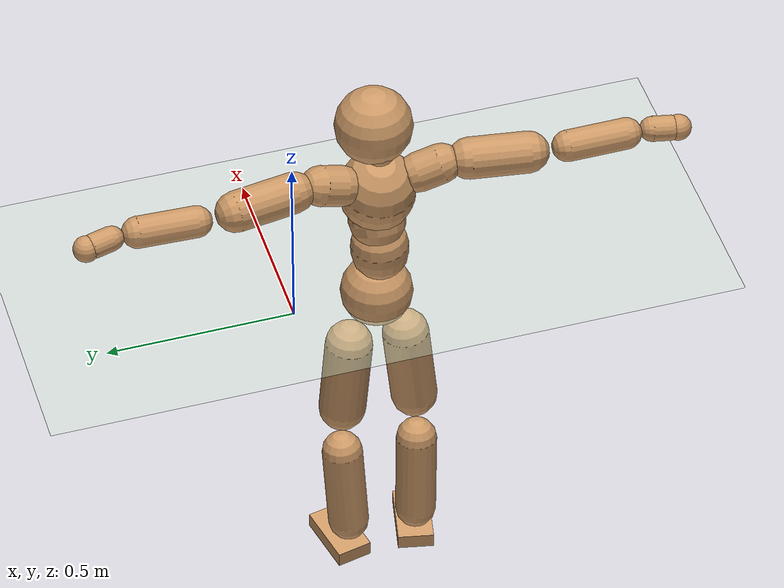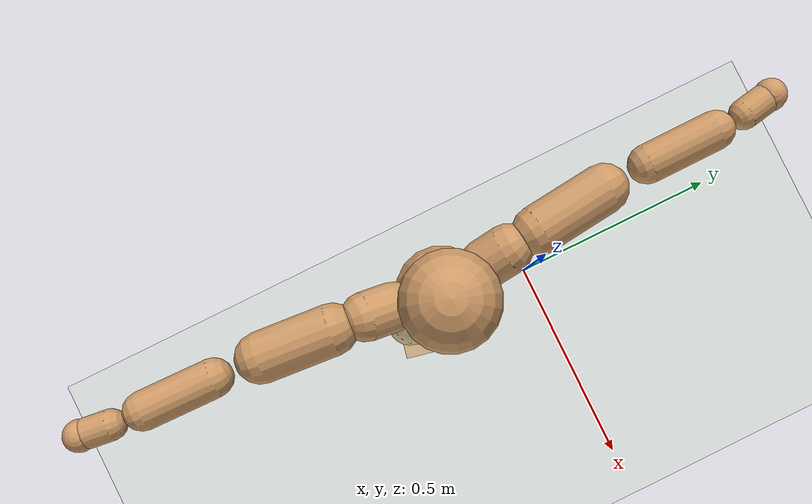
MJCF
<mujoco model="humanoid">
  <compiler coordinate="local"/>
  <default>
    <joint damping="0.0" armature="0.01" stiffness="0.0" limited="true"/>
    <geom conaffinity="1" condim="3" contype="7" margin="0.001" rgba="0.8 0.6 .4 1"/>
  </default>
  <asset>
    <texture type="skybox" builtin="gradient" rgb1=".4 .5 .6" rgb2="0 0 0" width="100" height="100"/>
    <texture builtin="flat" height="1278" mark="cross" markrgb="1 1 1" name="texgeom" random="0.01" rgb1="0.8 0.6 0.4" rgb2="0.8 0.6 0.4" type="cube" width="127"/>
    <texture builtin="checker" height="100" name="texplane" rgb1="0 0 0" rgb2="0.8 0.8 0.8" type="2d" width="100"/>
    <material name="MatPlane" reflectance="0.5" shininess="1" specular="1" texrepeat="60 60" texture="texplane"/>
    <material name="geom" texture="texgeom" texuniform="true"/>
  </asset>
  <worldbody>
    <light cutoff="100" diffuse="1 1 1" dir="-0 0 -1.3" directional="true" exponent="1" pos="0 0 1.3" specular=".1 .1 .1"/>
    <geom conaffinity="1" condim="3" name="floor" pos="0 0 0" rgba="0.8 0.9 0.8 1" size="100 100 .2" type="plane" material="MatPlane"/>
    <body name="Pelvis" pos="-0.0018 -0.2214 0.0298">
      <freejoint name="Pelvis"/>
      <geom type="sphere" contype="1" conaffinity="1" density="500" size="0.0956" pos="0.0000 0.0000 0.0000" name="Pelvis"/>
      <body name="L_Hip" pos="-0.0066 0.0708 -0.0918">
        <joint name="L_Hip_x" type="hinge" pos="0 0 0" axis="1 0 0" stiffness="800" damping="80" armature="0.02" range="-180.0000 180.0000"/>
        <joint name="L_Hip_y" type="hinge" pos="0 0 0" axis="0 1 0" stiffness="800" damping="80" armature="0.02" range="-180.0000 180.0000"/>
        <joint name="L_Hip_z" type="hinge" pos="0 0 0" axis="0 0 1" stiffness="800" damping="80" armature="0.02" range="-180.0000 180.0000"/>
        <geom type="capsule" contype="1" conaffinity="1" density="500" fromto="-0.0010 0.0069 -0.0757 -0.0040 0.0274 -0.3028" size="0.0628" name="L_Hip"/>
        <body name="L_Knee" pos="-0.005 0.0343 -0.3785">
          <joint name="L_Knee_x" type="hinge" pos="0 0 0" axis="1 0 0" stiffness="800" damping="80" armature="0.02" range="-180.0000 180.0000"/>
          <joint name="L_Knee_y" type="hinge" pos="0 0 0" axis="0 1 0" stiffness="800" damping="80" armature="0.02" range="-180.0000 180.0000"/>
          <joint name="L_Knee_z" type="hinge" pos="0 0 0" axis="0 0 1" stiffness="800" damping="80" armature="0.02" range="-180.0000 180.0000"/>
          <geom type="capsule" contype="1" conaffinity="1" density="500" fromto="-0.0090 -0.0027 -0.0806 -0.0358 -0.0110 -0.3223" size="0.0549" name="L_Knee"/>
          <body name="L_Ankle" pos="-0.0448 -0.0137 -0.4028">
            <joint name="L_Ankle_x" type="hinge" pos="0 0 0" axis="1 0 0" stiffness="800" damping="80" armature="0.02" range="-180.0000 180.0000"/>
            <joint name="L_Ankle_y" type="hinge" pos="0 0 0" axis="0 1 0" stiffness="800" damping="80" armature="0.02" range="-180.0000 180.0000"/>
            <joint name="L_Ankle_z" type="hinge" pos="0 0 0" axis="0 0 1" stiffness="800" damping="80" armature="0.02" range="-180.0000 180.0000"/>
            <geom type="box" contype="1" conaffinity="1" density="500" pos="0.0601 0.0128 -0.0281" size="0.0857 0.0481 0.0211" quat="0.9945 0.0000 0.0000 0.1046" name="L_Ankle"/>
            <body name="L_Toe" pos="0.1201 0.0256 -0.0561">
              <joint name="L_Toe_x" type="hinge" pos="0 0 0" axis="1 0 0" stiffness="500" damping="50" armature="0.02" range="-180.0000 180.0000"/>
              <joint name="L_Toe_y" type="hinge" pos="0 0 0" axis="0 1 0" stiffness="500" damping="50" armature="0.02" range="-180.0000 180.0000"/>
              <joint name="L_Toe_z" type="hinge" pos="0 0 0" axis="0 0 1" stiffness="500" damping="50" armature="0.02" range="-180.0000 180.0000"/>
              <geom type="box" contype="1" conaffinity="1" density="500" pos="0.0000 0.0000 0.0270" size="0.001 0.0024 0.001" quat="0.9939 0.0000 0.0000 0.1107" name="L_Toe"/>
            </body>
          </body>
        </body>
      </body>
      <body name="R_Hip" pos="-0.0041 -0.0691 -0.091">
        <joint name="R_Hip_x" type="hinge" pos="0 0 0" axis="1 0 0" stiffness="800" damping="80" armature="0.02" range="-180.0000 180.0000"/>
        <joint name="R_Hip_y" type="hinge" pos="0 0 0" axis="0 1 0" stiffness="800" damping="80" armature="0.02" range="-180.0000 180.0000"/>
        <joint name="R_Hip_z" type="hinge" pos="0 0 0" axis="0 0 1" stiffness="800" damping="80" armature="0.02" range="-180.0000 180.0000"/>
        <geom type="capsule" contype="1" conaffinity="1" density="500" fromto="-0.0019 -0.0077 -0.0772 -0.0075 -0.0308 -0.3090" size="0.0618" name="R_Hip"/>
        <body name="R_Knee" pos="-0.0093 -0.0385 -0.3862">
          <joint name="R_Knee_x" type="hinge" pos="0 0 0" axis="1 0 0" stiffness="800" damping="80" armature="0.02" range="-180.0000 180.0000"/>
          <joint name="R_Knee_y" type="hinge" pos="0 0 0" axis="0 1 0" stiffness="800" damping="80" armature="0.02" range="-180.0000 180.0000"/>
          <joint name="R_Knee_z" type="hinge" pos="0 0 0" axis="0 0 1" stiffness="800" damping="80" armature="0.02" range="-180.0000 180.0000"/>
          <geom type="capsule" contype="1" conaffinity="1" density="500" fromto="-0.0087 0.0032 -0.0807 -0.0346 0.0128 -0.3226" size="0.0548" name="R_Knee"/>
          <body name="R_Ankle" pos="-0.0433 0.016 -0.4033">
            <joint name="R_Ankle_x" type="hinge" pos="0 0 0" axis="1 0 0" stiffness="800" damping="80" armature="0.02" range="-180.0000 180.0000"/>
            <joint name="R_Ankle_y" type="hinge" pos="0 0 0" axis="0 1 0" stiffness="800" damping="80" armature="0.02" range="-180.0000 180.0000"/>
            <joint name="R_Ankle_z" type="hinge" pos="0 0 0" axis="0 0 1" stiffness="800" damping="80" armature="0.02" range="-180.0000 180.0000"/>
            <geom type="box" contype="1" conaffinity="1" density="500" pos="0.0620 -0.0130 -0.0243" size="0.0869 0.0484 0.021" quat="0.9947 0.0000 0.0000 -0.1028" name="R_Ankle"/>
            <body name="R_Toe" pos="0.1241 -0.0259 -0.0487">
              <joint name="R_Toe_x" type="hinge" pos="0 0 0" axis="1 0 0" stiffness="500" damping="50" armature="0.02" range="-180.0000 180.0000"/>
              <joint name="R_Toe_y" type="hinge" pos="0 0 0" axis="0 1 0" stiffness="500" damping="50" armature="0.02" range="-180.0000 180.0000"/>
              <joint name="R_Toe_z" type="hinge" pos="0 0 0" axis="0 0 1" stiffness="500" damping="50" armature="0.02" range="-180.0000 180.0000"/>
              <geom type="box" contype="1" conaffinity="1" density="500" pos="0.0000 0.0000 0.0250" size="0.001 0.0024 0.0011" quat="0.9956 0.0000 0.0000 -0.0936" name="R_Toe"/>
            </body>
          </body>
        </body>
      </body>
      <body name="Torso" pos="-0.0275 -0.0025 0.1097">
        <joint name="Torso_x" type="hinge" pos="0 0 0" axis="1 0 0" stiffness="1000" damping="100" armature="0.02" range="-180.0000 180.0000"/>
        <joint name="Torso_y" type="hinge" pos="0 0 0" axis="0 1 0" stiffness="1000" damping="100" armature="0.02" range="-180.0000 180.0000"/>
        <joint name="Torso_z" type="hinge" pos="0 0 0" axis="0 0 1" stiffness="1000" damping="100" armature="0.02" range="-180.0000 180.0000"/>
        <geom type="capsule" contype="1" conaffinity="1" density="500" fromto="0.0002 0.0031 0.0806 0.0001 0.0021 0.0537" size="0.0753" name="Torso"/>
        <body name="Spine" pos="0.0004 0.0052 0.1343">
          <joint name="Spine_x" type="hinge" pos="0 0 0" axis="1 0 0" stiffness="1000" damping="100" armature="0.02" range="-180.0000 180.0000"/>
          <joint name="Spine_y" type="hinge" pos="0 0 0" axis="0 1 0" stiffness="1000" damping="100" armature="0.02" range="-180.0000 180.0000"/>
          <joint name="Spine_z" type="hinge" pos="0 0 0" axis="0 0 1" stiffness="1000" damping="100" armature="0.02" range="-180.0000 180.0000"/>
          <geom type="capsule" contype="1" conaffinity="1" density="500" fromto="0.0156 0.0010 0.0314 0.0104 0.0007 0.0210" size="0.0749" name="Spine"/>
          <body name="Chest" pos="0.0261 0.0016 0.0524">
            <joint name="Chest_x" type="hinge" pos="0 0 0" axis="1 0 0" stiffness="1000" damping="100" armature="0.02" range="-180.0000 180.0000"/>
            <joint name="Chest_y" type="hinge" pos="0 0 0" axis="0 1 0" stiffness="1000" damping="100" armature="0.02" range="-180.0000 180.0000"/>
            <joint name="Chest_z" type="hinge" pos="0 0 0" axis="0 0 1" stiffness="1000" damping="100" armature="0.02" range="-180.0000 180.0000"/>
            <geom type="capsule" contype="1" conaffinity="1" density="500" fromto="-0.0232 -0.0011 0.0909 -0.0155 -0.0007 0.0606" size="0.0984" name="Chest"/>
            <body name="Neck" pos="-0.0447 -0.0028 0.2132">
              <joint name="Neck_x" type="hinge" pos="0 0 0" axis="1 0 0" stiffness="500" damping="50" armature="0.02" range="-180.0000 180.0000"/>
              <joint name="Neck_y" type="hinge" pos="0 0 0" axis="0 1 0" stiffness="500" damping="50" armature="0.02" range="-180.0000 180.0000"/>
              <joint name="Neck_z" type="hinge" pos="0 0 0" axis="0 0 1" stiffness="500" damping="50" armature="0.02" range="-180.0000 180.0000"/>
              <geom type="capsule" contype="1" conaffinity="1" density="500" fromto="0.0099 0.0010 0.0125 0.0396 0.0038 0.0498" size="0.0436" name="Neck"/>
              <body name="Head" pos="0.0495 0.0048 0.0623">
                <joint name="Head_x" type="hinge" pos="0 0 0" axis="1 0 0" stiffness="500" damping="50" armature="0.02" range="-180.0000 180.0000"/>
                <joint name="Head_y" type="hinge" pos="0 0 0" axis="0 1 0" stiffness="500" damping="50" armature="0.02" range="-180.0000 180.0000"/>
                <joint name="Head_z" type="hinge" pos="0 0 0" axis="0 0 1" stiffness="500" damping="50" armature="0.02" range="-180.0000 180.0000"/>
                <geom type="sphere" contype="1" conaffinity="1" density="500" size="0.1007" pos="0.0000 0.0000 0.0000" name="Head"/>
              </body>
            </body>
            <body name="L_Thorax" pos="-0.0333 0.0806 0.1222">
              <joint name="L_Thorax_x" type="hinge" pos="0 0 0" axis="1 0 0" stiffness="500" damping="50" armature="0.02" range="-180.0000 180.0000"/>
              <joint name="L_Thorax_y" type="hinge" pos="0 0 0" axis="0 1 0" stiffness="500" damping="50" armature="0.02" range="-180.0000 180.0000"/>
              <joint name="L_Thorax_z" type="hinge" pos="0 0 0" axis="0 0 1" stiffness="500" damping="50" armature="0.02" range="-180.0000 180.0000"/>
              <geom type="capsule" contype="1" conaffinity="1" density="500" fromto="-0.0018 0.0185 0.0063 -0.0073 0.0742 0.0254" size="0.0529" name="L_Thorax"/>
              <body name="L_Shoulder" pos="-0.0092 0.0927 0.0317">
                <joint name="L_Shoulder_x" type="hinge" pos="0 0 0" axis="1 0 0" stiffness="500" damping="50" armature="0.02" range="-720.0000 720.0000"/>
                <joint name="L_Shoulder_y" type="hinge" pos="0 0 0" axis="0 1 0" stiffness="500" damping="50" armature="0.02" range="-720.0000 720.0000"/>
                <joint name="L_Shoulder_z" type="hinge" pos="0 0 0" axis="0 0 1" stiffness="500" damping="50" armature="0.02" range="-720.0000 720.0000"/>
                <geom type="capsule" contype="1" conaffinity="1" density="500" fromto="-0.0057 0.0525 -0.0027 -0.0227 0.2101 -0.0108" size="0.0528" name="L_Shoulder"/>
                <body name="L_Elbow" pos="-0.0284 0.2626 -0.0135">
                  <joint name="L_Elbow_x" type="hinge" pos="0 0 0" axis="1 0 0" stiffness="500" damping="50" armature="0.02" range="-720.0000 720.0000"/>
                  <joint name="L_Elbow_y" type="hinge" pos="0 0 0" axis="0 1 0" stiffness="500" damping="50" armature="0.02" range="-720.0000 720.0000"/>
                  <joint name="L_Elbow_z" type="hinge" pos="0 0 0" axis="0 0 1" stiffness="500" damping="50" armature="0.02" range="-720.0000 720.0000"/>
                  <geom type="capsule" contype="1" conaffinity="1" density="500" fromto="-0.0001 0.0506 0.0019 -0.0006 0.2025 0.0075" size="0.041" name="L_Elbow"/>
                  <body name="L_Wrist" pos="-0.0007 0.2531 0.0094">
                    <joint name="L_Wrist_x" type="hinge" pos="0 0 0" axis="1 0 0" stiffness="300" damping="30" armature="0.02" range="-180.0000 180.0000"/>
                    <joint name="L_Wrist_y" type="hinge" pos="0 0 0" axis="0 1 0" stiffness="300" damping="30" armature="0.02" range="-180.0000 180.0000"/>
                    <joint name="L_Wrist_z" type="hinge" pos="0 0 0" axis="0 0 1" stiffness="300" damping="30" armature="0.02" range="-180.0000 180.0000"/>
                    <geom type="capsule" contype="1" conaffinity="1" density="500" fromto="-0.0030 0.0170 -0.0017 -0.0121 0.0679 -0.0066" size="0.0321" name="L_Wrist"/>
                    <body name="L_Hand" pos="-0.0151 0.0849 -0.0083">
                      <joint name="L_Hand_x" type="hinge" pos="0 0 0" axis="1 0 0" stiffness="300" damping="30" armature="0.02" range="-180.0000 180.0000"/>
                      <joint name="L_Hand_y" type="hinge" pos="0 0 0" axis="0 1 0" stiffness="300" damping="30" armature="0.02" range="-180.0000 180.0000"/>
                      <joint name="L_Hand_z" type="hinge" pos="0 0 0" axis="0 0 1" stiffness="300" damping="30" armature="0.02" range="-180.0000 180.0000"/>
                      <geom type="sphere" contype="1" conaffinity="1" density="500" size="0.0340" pos="0.0000 0.0000 0.0000" name="L_Hand"/>
                    </body>
                  </body>
                </body>
              </body>
            </body>
            <body name="R_Thorax" pos="-0.0379 -0.0832 0.1193">
              <joint name="R_Thorax_x" type="hinge" pos="0 0 0" axis="1 0 0" stiffness="500" damping="50" armature="0.02" range="-180.0000 180.0000"/>
              <joint name="R_Thorax_y" type="hinge" pos="0 0 0" axis="0 1 0" stiffness="500" damping="50" armature="0.02" range="-180.0000 180.0000"/>
              <joint name="R_Thorax_z" type="hinge" pos="0 0 0" axis="0 0 1" stiffness="500" damping="50" armature="0.02" range="-180.0000 180.0000"/>
              <geom type="capsule" contype="1" conaffinity="1" density="500" fromto="-0.0019 -0.0195 0.0068 -0.0077 -0.0780 0.0270" size="0.0518" name="R_Thorax"/>
              <body name="R_Shoulder" pos="-0.0096 -0.0975 0.0338">
                <joint name="R_Shoulder_x" type="hinge" pos="0 0 0" axis="1 0 0" stiffness="500" damping="50" armature="0.02" range="-720.0000 720.0000"/>
                <joint name="R_Shoulder_y" type="hinge" pos="0 0 0" axis="0 1 0" stiffness="500" damping="50" armature="0.02" range="-720.0000 720.0000"/>
                <joint name="R_Shoulder_z" type="hinge" pos="0 0 0" axis="0 0 1" stiffness="500" damping="50" armature="0.02" range="-720.0000 720.0000"/>
                <geom type="capsule" contype="1" conaffinity="1" density="500" fromto="-0.0044 -0.0514 -0.0028 -0.0176 -0.2056 -0.0110" size="0.0542" name="R_Shoulder"/>
                <body name="R_Elbow" pos="-0.022 -0.257 -0.0138">
                  <joint name="R_Elbow_x" type="hinge" pos="0 0 0" axis="1 0 0" stiffness="500" damping="50" armature="0.02" range="-720.0000 720.0000"/>
                  <joint name="R_Elbow_y" type="hinge" pos="0 0 0" axis="0 1 0" stiffness="500" damping="50" armature="0.02" range="-720.0000 720.0000"/>
                  <joint name="R_Elbow_z" type="hinge" pos="0 0 0" axis="0 0 1" stiffness="500" damping="50" armature="0.02" range="-720.0000 720.0000"/>
                  <geom type="capsule" contype="1" conaffinity="1" density="500" fromto="-0.0010 -0.0517 0.0015 -0.0042 -0.2067 0.0062" size="0.0412" name="R_Elbow"/>
                  <body name="R_Wrist" pos="-0.0052 -0.2584 0.0077">
                    <joint name="R_Wrist_x" type="hinge" pos="0 0 0" axis="1 0 0" stiffness="300" damping="30" armature="0.02" range="-180.0000 180.0000"/>
                    <joint name="R_Wrist_y" type="hinge" pos="0 0 0" axis="0 1 0" stiffness="300" damping="30" armature="0.02" range="-180.0000 180.0000"/>
                    <joint name="R_Wrist_z" type="hinge" pos="0 0 0" axis="0 0 1" stiffness="300" damping="30" armature="0.02" range="-180.0000 180.0000"/>
                    <geom type="capsule" contype="1" conaffinity="1" density="500" fromto="-0.0021 -0.0171 -0.0012 -0.0084 -0.0683 -0.0050" size="0.0328" name="R_Wrist"/>
                    <body name="R_Hand" pos="-0.0105 -0.0853 -0.0062">
                      <joint name="R_Hand_x" type="hinge" pos="0 0 0" axis="1 0 0" stiffness="300" damping="30" armature="0.02" range="-180.0000 180.0000"/>
                      <joint name="R_Hand_y" type="hinge" pos="0 0 0" axis="0 1 0" stiffness="300" damping="30" armature="0.02" range="-180.0000 180.0000"/>
                      <joint name="R_Hand_z" type="hinge" pos="0 0 0" axis="0 0 1" stiffness="300" damping="30" armature="0.02" range="-180.0000 180.0000"/>
                      <geom type="sphere" contype="1" conaffinity="1" density="500" size="0.0342" pos="0.0000 0.0000 0.0000" name="R_Hand"/>
                    </body>
                  </body>
                </body>
              </body>
            </body>
          </body>
        </body>
      </body>
    </body>
  </worldbody>
  <actuator>
    <motor name="L_Hip_x" joint="L_Hip_x" gear="500"/>
    <motor name="L_Hip_y" joint="L_Hip_y" gear="500"/>
    <motor name="L_Hip_z" joint="L_Hip_z" gear="500"/>
    <motor name="L_Knee_x" joint="L_Knee_x" gear="500"/>
    <motor name="L_Knee_y" joint="L_Knee_y" gear="500"/>
    <motor name="L_Knee_z" joint="L_Knee_z" gear="500"/>
    <motor name="L_Ankle_x" joint="L_Ankle_x" gear="500"/>
    <motor name="L_Ankle_y" joint="L_Ankle_y" gear="500"/>
    <motor name="L_Ankle_z" joint="L_Ankle_z" gear="500"/>
    <motor name="L_Toe_x" joint="L_Toe_x" gear="500"/>
    <motor name="L_Toe_y" joint="L_Toe_y" gear="500"/>
    <motor name="L_Toe_z" joint="L_Toe_z" gear="500"/>
    <motor name="R_Hip_x" joint="R_Hip_x" gear="500"/>
    <motor name="R_Hip_y" joint="R_Hip_y" gear="500"/>
    <motor name="R_Hip_z" joint="R_Hip_z" gear="500"/>
    <motor name="R_Knee_x" joint="R_Knee_x" gear="500"/>
    <motor name="R_Knee_y" joint="R_Knee_y" gear="500"/>
    <motor name="R_Knee_z" joint="R_Knee_z" gear="500"/>
    <motor name="R_Ankle_x" joint="R_Ankle_x" gear="500"/>
    <motor name="R_Ankle_y" joint="R_Ankle_y" gear="500"/>
    <motor name="R_Ankle_z" joint="R_Ankle_z" gear="500"/>
    <motor name="R_Toe_x" joint="R_Toe_x" gear="500"/>
    <motor name="R_Toe_y" joint="R_Toe_y" gear="500"/>
    <motor name="R_Toe_z" joint="R_Toe_z" gear="500"/>
    <motor name="Torso_x" joint="Torso_x" gear="500"/>
    <motor name="Torso_y" joint="Torso_y" gear="500"/>
    <motor name="Torso_z" joint="Torso_z" gear="500"/>
    <motor name="Spine_x" joint="Spine_x" gear="500"/>
    <motor name="Spine_y" joint="Spine_y" gear="500"/>
    <motor name="Spine_z" joint="Spine_z" gear="500"/>
    <motor name="Chest_x" joint="Chest_x" gear="500"/>
    <motor name="Chest_y" joint="Chest_y" gear="500"/>
    <motor name="Chest_z" joint="Chest_z" gear="500"/>
    <motor name="Neck_x" joint="Neck_x" gear="500"/>
    <motor name="Neck_y" joint="Neck_y" gear="500"/>
    <motor name="Neck_z" joint="Neck_z" gear="500"/>
    <motor name="Head_x" joint="Head_x" gear="500"/>
    <motor name="Head_y" joint="Head_y" gear="500"/>
    <motor name="Head_z" joint="Head_z" gear="500"/>
    <motor name="L_Thorax_x" joint="L_Thorax_x" gear="500"/>
    <motor name="L_Thorax_y" joint="L_Thorax_y" gear="500"/>
    <motor name="L_Thorax_z" joint="L_Thorax_z" gear="500"/>
    <motor name="L_Shoulder_x" joint="L_Shoulder_x" gear="500"/>
    <motor name="L_Shoulder_y" joint="L_Shoulder_y" gear="500"/>
    <motor name="L_Shoulder_z" joint="L_Shoulder_z" gear="500"/>
    <motor name="L_Elbow_x" joint="L_Elbow_x" gear="500"/>
    <motor name="L_Elbow_y" joint="L_Elbow_y" gear="500"/>
    <motor name="L_Elbow_z" joint="L_Elbow_z" gear="500"/>
    <motor name="L_Wrist_x" joint="L_Wrist_x" gear="500"/>
    <motor name="L_Wrist_y" joint="L_Wrist_y" gear="500"/>
    <motor name="L_Wrist_z" joint="L_Wrist_z" gear="500"/>
    <motor name="L_Hand_x" joint="L_Hand_x" gear="500"/>
    <motor name="L_Hand_y" joint="L_Hand_y" gear="500"/>
    <motor name="L_Hand_z" joint="L_Hand_z" gear="500"/>
    <motor name="R_Thorax_x" joint="R_Thorax_x" gear="500"/>
    <motor name="R_Thorax_y" joint="R_Thorax_y" gear="500"/>
    <motor name="R_Thorax_z" joint="R_Thorax_z" gear="500"/>
    <motor name="R_Shoulder_x" joint="R_Shoulder_x" gear="500"/>
    <motor name="R_Shoulder_y" joint="R_Shoulder_y" gear="500"/>
    <motor name="R_Shoulder_z" joint="R_Shoulder_z" gear="500"/>
    <motor name="R_Elbow_x" joint="R_Elbow_x" gear="500"/>
    <motor name="R_Elbow_y" joint="R_Elbow_y" gear="500"/>
    <motor name="R_Elbow_z" joint="R_Elbow_z" gear="500"/>
    <motor name="R_Wrist_x" joint="R_Wrist_x" gear="500"/>
    <motor name="R_Wrist_y" joint="R_Wrist_y" gear="500"/>
    <motor name="R_Wrist_z" joint="R_Wrist_z" gear="500"/>
    <motor name="R_Hand_x" joint="R_Hand_x" gear="500"/>
    <motor name="R_Hand_y" joint="R_Hand_y" gear="500"/>
    <motor name="R_Hand_z" joint="R_Hand_z" gear="500"/>
  </actuator>
  <contact>
    <exclude body1="Torso" body2="Chest"/>
    <exclude body1="Head" body2="Chest"/>
    <exclude body1="R_Knee" body2="R_Toe"/>
    <exclude body1="R_Knee" body2="L_Ankle"/>
    <exclude body1="R_Knee" body2="L_Toe"/>
    <exclude body1="L_Knee" body2="L_Toe"/>
    <exclude body1="L_Knee" body2="R_Ankle"/>
    <exclude body1="L_Knee" body2="R_Toe"/>
    <exclude body1="L_Shoulder" body2="Chest"/>
    <exclude body1="R_Shoulder" body2="Chest"/>
  </contact>
  <sensor/>
  <size njmax="700" nconmax="700"/>
</mujoco>
